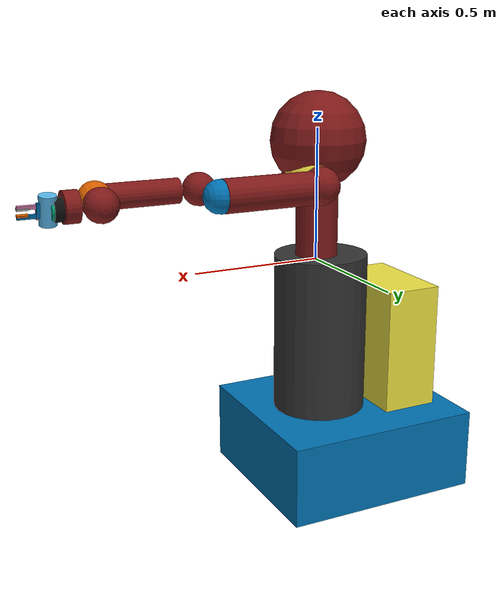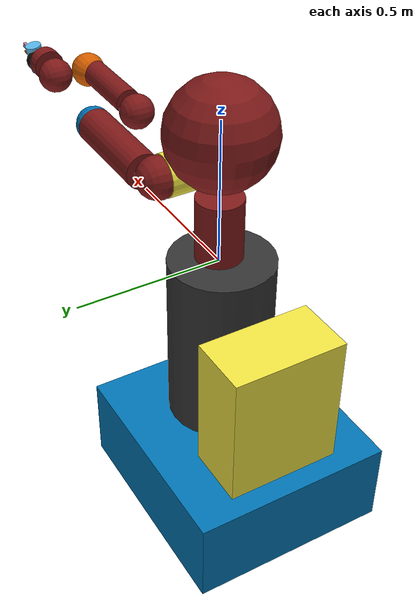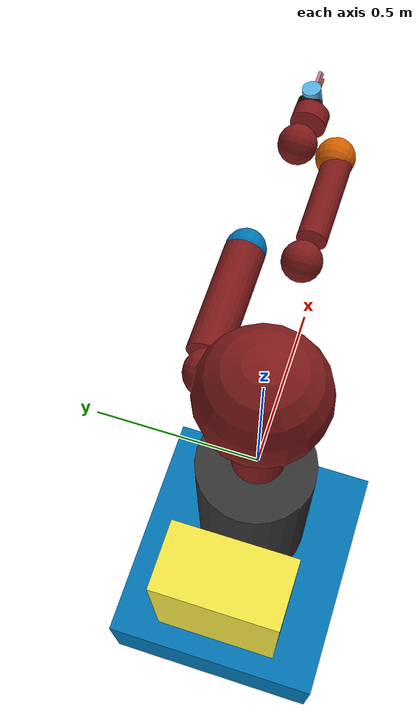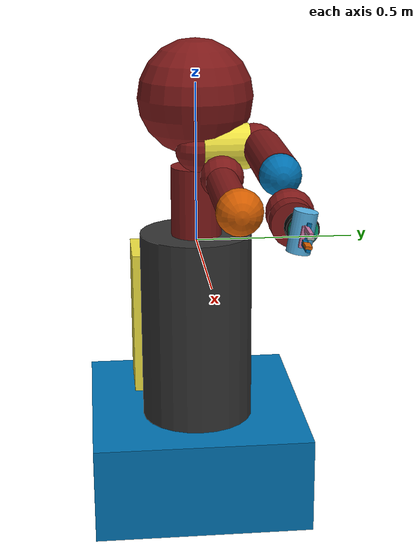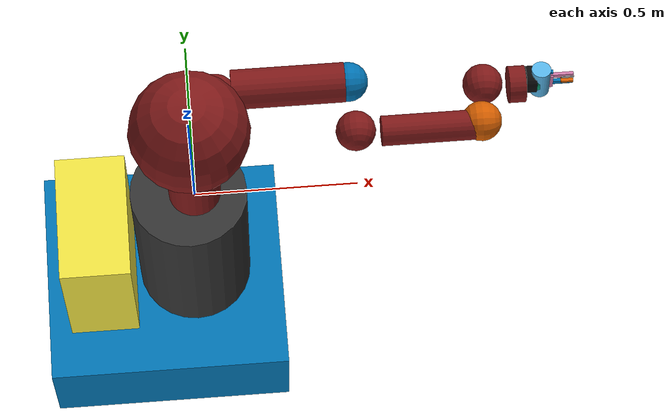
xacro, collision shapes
<?xml version="1.0" ?>
<!-- |    This document was autogenerated by xacro from /home/paul/Downloads/sawyer_ws/install/sawyer_description/share/sawyer_description/urdf/sawyer.urdf.xacro | -->
<!-- |    EDITING THIS FILE BY HAND IS NOT RECOMMENDED                                 | -->
<robot name="sawyer">
  <material name="black">
    <color rgba="0 0 0 1"/>
  </material>
  <material name="darkgray">
    <color rgba=".2 .2 .2 1"/>
  </material>
  <material name="darkred">
    <color rgba=".5 .1 .1 1"/>
  </material>
  <material name="sawyer_red">
    <color rgba=".5 .1 .1 1"/>
  </material>
  <material name="sawyer_gray">
    <color rgba="0.75294 0.75294 0.75294 1"/>
  </material>
  <link name="base"/>
  <link name="torso">
    <visual>
      <origin rpy="0 0 0" xyz="0 0 0"/>
      <geometry>
        <box size="0.001 0.001 0.001"/>
      </geometry>
      <material name="darkgray">
        <color rgba=".2 .2 .2 1"/>
      </material>
    </visual>
    <inertial>
      <origin rpy="0 0 0" xyz="0.000000 0.000000 0.000000"/>
      <mass value="0.0001"/>
      <inertia ixx="1e-08" ixy="0" ixz="0" iyy="1e-08" iyz="0" izz="1e-08"/>
    </inertial>
  </link>
  <link name="pedestal">
    <visual>
      <origin rpy="1.57079632679 0 -1.57079632679" xyz="0.26 0.345 -0.91488"/>
      <geometry>
        <mesh filename="package://sawyer_description/meshes/sawyer_pv/pedestal.DAE"/>
      </geometry>
      <material name="darkgray"/>
    </visual>
    <collision>
      <origin rpy="0 0 0" xyz="-0.02 0 -0.29"/>
      <geometry>
        <cylinder length="0.62" radius="0.18"/>
      </geometry>
    </collision>
    <inertial>
      <origin rpy="0 0 0" xyz="0 0 -0.5"/>
      <mass value="60.86397744"/>
      <inertia ixx="5.0635929" ixy="0.00103417" ixz="0.80199628" iyy="6.08689388" iyz="0.00105311" izz="4.96191932"/>
    </inertial>
  </link>
  <link name="controller_box">
    <collision>
      <origin rpy="0 0 0" xyz="-0.325 0 -0.38"/>
      <geometry>
        <box size="0.22 0.4 0.53"/>
      </geometry>
    </collision>
  </link>
  <joint name="controller_box_fixed" type="fixed">
    <origin rpy="0 0 0" xyz="0.0 0.0 0.0"/>
    <parent link="base"/>
    <child link="controller_box"/>
  </joint>
  <link name="pedestal_feet">
    <collision>
      <origin rpy="0 0 0" xyz="-0.1225 0 -0.758"/>
      <geometry>
        <box size="0.77 0.7 0.31"/>
      </geometry>
    </collision>
  </link>
  <joint name="pedestal_feet_fixed" type="fixed">
    <origin rpy="0 0 0" xyz="0.0 0.0 0.0"/>
    <parent link="base"/>
    <child link="pedestal_feet"/>
  </joint>
  <joint name="pedestal_fixed" type="fixed">
    <origin rpy="0 0 0" xyz="0.0 0.0 0.0"/>
    <parent link="base"/>
    <child link="pedestal"/>
  </joint>
  <joint name="right_arm_mount" type="fixed">
    <origin rpy="0 0 0" xyz="0.0 0.0 0.0"/>
    <parent link="base"/>
    <child link="right_arm_base_link"/>
  </joint>
  <joint name="torso_t0" type="fixed">
    <origin rpy="0 0 0" xyz="0 0 0"/>
    <parent link="base"/>
    <child link="torso"/>
  </joint>
  <link name="right_arm_base_link">
    <inertial>
      <origin rpy="0 0 0" xyz="-0.0006241 -2.8025E-05 0.065404"/>
      <mass value="2.0687"/>
      <inertia ixx="0.0067599" ixy="-4.2024E-05" ixz="-6.1904E-07" iyy="0.0067877" iyz="1.5888E-05" izz="0.0074031"/>
    </inertial>
    <visual>
      <origin rpy="0 0 0" xyz="0 0 0"/>
      <geometry>
        <mesh filename="package://sawyer_description/meshes/sawyer_pv/base.DAE"/>
      </geometry>
      <material name="sawyer_red"/>
    </visual>
    <collision>
      <origin rpy="0 0 0" xyz="0 0 0.12"/>
      <geometry>
        <cylinder length="0.24" radius="0.08"/>
      </geometry>
    </collision>
  </link>
  <link name="right_l0">
    <inertial>
      <origin rpy="0 0 0" xyz="0.024366 0.010969 0.14363"/>
      <mass value="5.3213"/>
      <inertia ixx="0.053314" ixy="0.0047093" ixz="0.011734" iyy="0.057902" iyz="0.0080179" izz="0.023659"/>
    </inertial>
    <visual>
      <origin rpy="0 0 0" xyz="0 0 0"/>
      <geometry>
        <mesh filename="package://sawyer_description/meshes/sawyer_mp3/l0.DAE"/>
      </geometry>
      <material name="sawyer_red"/>
    </visual>
    <collision>
      <origin rpy="0 0 0" xyz="0.08 0 0.23"/>
      <geometry>
        <sphere radius="0.07"/>
      </geometry>
    </collision>
  </link>
  <joint name="right_j0" type="revolute">
    <origin rpy="0 0 0" xyz="0 0 0.08"/>
    <parent link="right_arm_base_link"/>
    <child link="right_l0"/>
    <axis xyz="0 0 1"/>
    <limit effort="80.0" lower="-3.0503" upper="3.0503" velocity="1.74"/>
  </joint>
  <link name="head">
    <inertial>
      <origin rpy="0 0 0" xyz="0.0053207 -2.6549E-05 0.1021"/>
      <mass value="1.5795"/>
      <inertia ixx="0.011833" ixy="-4.4669E-06" ixz="4.9425E-05" iyy="0.0082709" iyz="4.2124E-07" izz="0.0049661"/>
    </inertial>
    <visual>
      <origin rpy="0 0 0" xyz="0 0 0"/>
      <geometry>
        <mesh filename="package://sawyer_description/meshes/sawyer_pv/head.DAE"/>
      </geometry>
      <material name="sawyer_red"/>
    </visual>
    <collision>
      <origin rpy="0 0 0" xyz="0 0 0.08"/>
      <geometry>
        <sphere radius="0.18"/>
      </geometry>
    </collision>
  </link>
  <joint name="head_pan" type="revolute">
    <origin rpy="0 0 0" xyz="0 0 0.2965"/>
    <parent link="right_l0"/>
    <child link="head"/>
    <axis xyz="0 0 1"/>
    <limit effort="8" lower="-5.0952" upper="0.9064" velocity="1.8"/>
  </joint>
  <link name="right_torso_itb">
    <inertial>
      <origin rpy="0 0 0" xyz="0.000000 0.000000 0.000000"/>
      <mass value="0.0001"/>
      <inertia ixx="1e-08" ixy="0" ixz="0" iyy="1e-08" iyz="0" izz="1e-08"/>
    </inertial>
  </link>
  <joint name="right_torso_itb" type="fixed">
    <origin rpy="0 -1.57079632679 0" xyz="-.055 0 .22"/>
    <parent link="right_l0"/>
    <child link="right_torso_itb"/>
    <axis xyz="0 0 1"/>
  </joint>
  <link name="right_l1">
    <inertial>
      <origin rpy="0 0 0" xyz="-0.0030849 -0.026811 0.092521"/>
      <mass value="4.505"/>
      <inertia ixx="0.022398" ixy="-0.00023986" ixz="-0.00029362" iyy="0.014613" iyz="-0.0060875" izz="0.017295"/>
    </inertial>
    <visual>
      <origin rpy="0 0 0" xyz="0 0 0"/>
      <geometry>
        <mesh filename="package://sawyer_description/meshes/sawyer_mp3/l1.DAE"/>
      </geometry>
      <material name="sawyer_red"/>
    </visual>
    <collision>
      <origin rpy="0 0 0" xyz="0 0 0.1225"/>
      <geometry>
        <sphere radius="0.07"/>
      </geometry>
    </collision>
  </link>
  <joint name="right_j1" type="revolute">
    <origin rpy="-1.57079632679 1.57079632679 0" xyz="0.081 0.05 0.237"/>
    <parent link="right_l0"/>
    <child link="right_l1"/>
    <axis xyz="0 0 1"/>
    <limit effort="80.0" lower="-3.8095" upper="2.2736" velocity="1.328"/>
  </joint>
  <link name="right_l2">
    <inertial>
      <origin rpy="0 0 0" xyz="-0.00016044 -0.014967 0.13582"/>
      <mass value="1.745"/>
      <inertia ixx="0.025506" ixy="4.4101E-06" ixz="1.4955E-05" iyy="0.0253" iyz="-0.0033204" izz="0.0034179"/>
    </inertial>
    <visual>
      <origin rpy="0 0 0" xyz="0 0 0"/>
      <geometry>
        <mesh filename="package://sawyer_description/meshes/sawyer_pv/l2.DAE"/>
      </geometry>
      <material name="sawyer_red"/>
    </visual>
    <collision>
      <origin rpy="0 0 0" xyz="0 0 0.08"/>
      <geometry>
        <cylinder length="0.34" radius="0.06"/>
      </geometry>
    </collision>
  </link>
  <joint name="right_j2" type="revolute">
    <origin rpy="1.57079632679 0 0" xyz="0 -0.14 0.1425"/>
    <parent link="right_l1"/>
    <child link="right_l2"/>
    <axis xyz="0 0 1"/>
    <limit effort="40.0" lower="-3.0426" upper="3.0426" velocity="1.957"/>
  </joint>
  <link name="right_l3">
    <inertial>
      <origin rpy="0 0 0" xyz="-0.0048135 -0.0281 -0.084154"/>
      <mass value="2.5097"/>
      <inertia ixx="0.01016" ixy="-9.7452E-06" ixz="0.00026624" iyy="0.0065685" iyz="0.0030316" izz="0.0069078"/>
    </inertial>
    <visual>
      <origin rpy="0 0 0" xyz="0 0 0"/>
      <geometry>
        <mesh filename="package://sawyer_description/meshes/sawyer_pv/l3.DAE"/>
      </geometry>
      <material name="sawyer_red"/>
    </visual>
    <collision>
      <origin rpy="0 0 0" xyz="0 -0.01 -0.12"/>
      <geometry>
        <sphere radius="0.06"/>
      </geometry>
    </collision>
  </link>
  <joint name="right_j3" type="revolute">
    <origin rpy="-1.57079632679 0 0" xyz="0 -0.042 0.26"/>
    <parent link="right_l2"/>
    <child link="right_l3"/>
    <axis xyz="0 0 1"/>
    <limit effort="40.0" lower="-3.0439" upper="3.0439" velocity="1.957"/>
  </joint>
  <link name="right_l4">
    <inertial>
      <origin rpy="0 0 0" xyz="-0.0018844 0.0069001 0.1341"/>
      <mass value="1.1136"/>
      <inertia ixx="0.013557" ixy="1.8109E-05" ixz="0.00013523" iyy="0.013555" iyz="0.0010561" izz="0.0013658"/>
    </inertial>
    <visual>
      <origin rpy="0 0 0" xyz="0 0 0"/>
      <geometry>
        <mesh filename="package://sawyer_description/meshes/sawyer_pv/l4.DAE"/>
      </geometry>
      <material name="sawyer_red"/>
    </visual>
    <collision>
      <origin rpy="0 0 0" xyz="0 0 0.11"/>
      <geometry>
        <cylinder length="0.30" radius="0.045"/>
      </geometry>
    </collision>
  </link>
  <joint name="right_j4" type="revolute">
    <origin rpy="1.57079632679 0 0" xyz="0 -0.125 -0.1265"/>
    <parent link="right_l3"/>
    <child link="right_l4"/>
    <axis xyz="0 0 1"/>
    <limit effort="9.0" lower="-2.9761" upper="2.9761" velocity="3.485"/>
  </joint>
  <link name="right_arm_itb">
    <inertial>
      <origin rpy="0 0 0" xyz="0.000000 0.000000 0.000000"/>
      <mass value="0.0001"/>
      <inertia ixx="1e-08" ixy="0" ixz="0" iyy="1e-08" iyz="0" izz="1e-08"/>
    </inertial>
  </link>
  <joint name="right_arm_itb" type="fixed">
    <origin rpy="0 -1.57079632679 0" xyz="-.055 0 .075"/>
    <parent link="right_l4"/>
    <child link="right_arm_itb"/>
    <axis xyz="0 0 1"/>
  </joint>
  <link name="right_l5">
    <inertial>
      <origin rpy="0 0 0" xyz="0.0061133 -0.023697 0.076416"/>
      <mass value="1.5625"/>
      <inertia ixx="0.0047328" ixy="0.00011526" ixz="4.6269E-05" iyy="0.0029676" iyz="-0.0011557" izz="0.0031762"/>
    </inertial>
    <visual>
      <origin rpy="0 0 0" xyz="0 0 0"/>
      <geometry>
        <mesh filename="package://sawyer_description/meshes/sawyer_pv/l5.DAE"/>
      </geometry>
      <material name="sawyer_red"/>
    </visual>
    <collision>
      <origin rpy="0 0 0" xyz="0 0 0.1"/>
      <geometry>
        <sphere radius="0.06"/>
      </geometry>
    </collision>
  </link>
  <joint name="right_j5" type="revolute">
    <origin rpy="-1.57079632679 0 0" xyz="0 0.031 0.275"/>
    <parent link="right_l4"/>
    <child link="right_l5"/>
    <axis xyz="0 0 1"/>
    <limit effort="9.0" lower="-2.9761" upper="2.9761" velocity="3.485"/>
  </joint>
  <link name="right_hand_camera"/>
  <joint name="right_hand_camera" type="fixed">
    <origin rpy="0 1.57079632679 0" xyz="0.039552 -0.033 0.0695"/>
    <parent link="right_l5"/>
    <child link="right_hand_camera"/>
    <axis xyz="0 0 0"/>
  </joint>
  <link name="right_wrist"/>
  <joint name="right_wrist" type="fixed">
    <origin rpy="1.57079632679 0 0" xyz="0 0 0.10541"/>
    <parent link="right_l5"/>
    <child link="right_wrist"/>
    <axis xyz="0 0 0"/>
  </joint>
  <link name="right_l6">
    <inertial>
      <origin rpy="0 0 0" xyz="-8.0726E-06 0.0085838 -0.0049566"/>
      <mass value="0.3292"/>
      <inertia ixx="0.00031105" ixy="1.4771E-06" ixz="-3.7074E-07" iyy="0.00021549" iyz="-8.4533E-06" izz="0.00035976"/>
    </inertial>
    <visual>
      <origin rpy="0 0 0" xyz="0 0 0"/>
      <geometry>
        <mesh filename="package://sawyer_description/meshes/sawyer_mp1/l6.DAE"/>
      </geometry>
      <material name="sawyer_red"/>
    </visual>
    <collision>
      <origin rpy="0 0 0" xyz="0 0.015 -0.01"/>
      <geometry>
        <cylinder length="0.05" radius="0.055"/>
      </geometry>
    </collision>
  </link>
  <joint name="right_j6" type="revolute">
    <origin rpy="-1.57079632679 -0.17453 3.1416" xyz="0 -0.11 0.1053"/>
    <parent link="right_l5"/>
    <child link="right_l6"/>
    <axis xyz="0 0 1"/>
    <limit effort="9.0" lower="-4.7124" upper="4.7124" velocity="4.545"/>
  </joint>
  <link name="right_hand">
    <collision>
      <origin rpy="0 0 0" xyz="0 0 0.02"/>
      <geometry>
        <cylinder length="0.03" radius="0.035"/>
      </geometry>
    </collision>
    <inertial>
      <origin rpy="0 0 0" xyz="1.0E-08 1.0E-08 1.0E-08"/>
      <mass value="1.0E-08"/>
      <inertia ixx="1.0E-08" ixy="1.0E-08" ixz="1.0E-08" iyy="1.0E-08" iyz="1.0E-08" izz="1.0E-08"/>
    </inertial>
  </link>
  <joint name="right_hand" type="fixed">
    <origin rpy="0 0 1.570796" xyz="0 0 0.0245"/>
    <axis xyz="0 0 1"/>
    <parent link="right_l6"/>
    <child link="right_hand"/>
  </joint>
  <link name="right_l1_2">
    <inertial>
      <origin rpy="0 0 0" xyz="1.0E-08 1.0E-08 1.0E-08"/>
      <mass value="1.0E-08"/>
      <inertia ixx="1.0E-08" ixy="1.0E-08" ixz="1.0E-08" iyy="1.0E-08" iyz="1.0E-08" izz="1.0E-08"/>
    </inertial>
    <collision>
      <origin rpy="0 0 0" xyz="0 0 0.035"/>
      <geometry>
        <cylinder length="0.14" radius="0.07"/>
      </geometry>
    </collision>
  </link>
  <joint name="right_j1_2" type="fixed">
    <origin rpy="0 0 0" xyz="0 0 0"/>
    <parent link="right_l1"/>
    <child link="right_l1_2"/>
    <axis xyz="0 0 1"/>
  </joint>
  <link name="right_l2_2">
    <inertial>
      <origin rpy="0 0 0" xyz="1.0E-08 1.0E-08 1.0E-08"/>
      <mass value="1.0E-08"/>
      <inertia ixx="1.0E-08" ixy="1.0E-08" ixz="1.0E-08" iyy="1.0E-08" iyz="1.0E-08" izz="1.0E-08"/>
    </inertial>
    <collision>
      <origin rpy="0 0 0" xyz="0 0 0.26"/>
      <geometry>
        <sphere radius="0.06"/>
      </geometry>
    </collision>
  </link>
  <joint name="right_j2_2" type="fixed">
    <origin rpy="0 0 0" xyz="0 0 0"/>
    <parent link="right_l2"/>
    <child link="right_l2_2"/>
    <axis xyz="0 0 1"/>
  </joint>
  <link name="right_l4_2">
    <inertial>
      <origin rpy="0 0 0" xyz="1.0E-08 1.0E-08 1.0E-08"/>
      <mass value="1.0E-08"/>
      <inertia ixx="1.0E-08" ixy="1.0E-08" ixz="1.0E-08" iyy="1.0E-08" iyz="1.0E-08" izz="1.0E-08"/>
    </inertial>
    <collision>
      <origin rpy="0 0 0" xyz="0 0.01 0.26"/>
      <geometry>
        <sphere radius="0.06"/>
      </geometry>
    </collision>
  </link>
  <joint name="right_j4_2" type="fixed">
    <origin rpy="0 0 0" xyz="0 0 0"/>
    <parent link="right_l4"/>
    <child link="right_l4_2"/>
    <axis xyz="0 0 1"/>
  </joint>
  <link name="screen">
    <visual>
      <origin rpy="0 0 0" xyz="0 0 0"/>
      <geometry>
        <box size="0.24 0.14 0.002"/>
      </geometry>
      <material name="darkgray"/>
    </visual>
    <collision>
      <origin rpy="0 0 0" xyz="0 0 0"/>
      <geometry>
        <sphere radius="0.001"/>
      </geometry>
    </collision>
    <inertial>
      <origin rpy="0 0 0" xyz="0 0 0"/>
      <mass value="0.0001"/>
      <inertia ixx="1e-08" ixy="0" ixz="0" iyy="1e-08" iyz="0" izz="1e-08"/>
    </inertial>
  </link>
  <joint name="display_joint" type="fixed">
    <origin rpy="1.57079632679 0 1.57079632679" xyz="0.03 0.0 0.105"/>
    <parent link="head"/>
    <child link="screen"/>
  </joint>
  <link name="head_camera"/>
  <joint name="head_camera" type="fixed">
    <origin rpy="-2.1293 0 -1.57079632679" xyz="0.0228027 0 0.216572"/>
    <parent link="head"/>
    <child link="head_camera"/>
    <axis xyz="0 0 0"/>
  </joint>
  <!-- Base of whole end effector - (Connector Plate + Electric Gripper + Fingers + Tips) -->
  <link name="right_gripper_base">
    <inertial>
      <!-- Sum Gripper Mass - for whole end effector, measured from end of plastic cuff -->
      <mass value="0.47"/>
      <origin rpy="0 0 0" xyz="0.0028 -0.0004 0.0343"/>
      <inertia ixx="1e-08" ixy="0" ixz="0" iyy="1e-08" iyz="0" izz="1e-08"/>
    </inertial>
  </link>
  <!-- Electric Gripper Base Link -->
  <link name="right_electric_gripper_base">
    <visual>
      <origin rpy="0 0 0" xyz="0 0 0"/>
      <geometry>
        <mesh filename="package://intera_tools_description/meshes/electric_gripper/electric_gripper_base.DAE"/>
      </geometry>
    </visual>
    <collision>
      <origin rpy="-1.5707963267948966 3.141592653589793 0" xyz="0.004 0.0 0.025"/>
      <geometry>
        <cylinder length="0.1" radius="0.029"/>
      </geometry>
      <material name="darkred">
        <color rgba=".5 .1 .1 1"/>
      </material>
    </collision>
    <inertial>
      <origin rpy="-1.5707963267948966 3.141592653589793 0" xyz="0.0 0.0 0.0"/>
      <mass value="2e-06"/>
      <inertia ixx="1.1e-09" ixy="0" ixz="0" iyy="1.1e-09" iyz="0" izz="1.1e-09"/>
    </inertial>
  </link>
  <!-- Connector Plate Joint -->
  <joint name="right_connector_plate_base_joint" type="fixed">
    <origin rpy="0 0 0" xyz="0 0 0.0018"/>
    <parent link="right_gripper_base"/>
    <child link="right_connector_plate_base"/>
  </joint>
  <link name="right_connector_plate_base">
    <inertial>
      <origin rpy="0 0 0" xyz="0 0 0"/>
      <mass value="0.0"/>
      <inertia ixx="6.9922E-05" ixy="6.1026E-08" ixz="-1.7042E-06" iyy="6.8188E-05" iyz="-1.6118E-08" izz="0.00012392"/>
    </inertial>
    <visual>
      <origin rpy="0 0 0" xyz="0 0 0"/>
      <geometry>
        <mesh filename="package://intera_tools_description/meshes/connector_plate/connector_plate.STL"/>
      </geometry>
      <material name="black">
        <color rgba="0.05 0.05 0.05 1"/>
      </material>
    </visual>
    <collision>
      <origin rpy="0 0 0" xyz="0 0 0.0135"/>
      <geometry>
        <cylinder length="0.0302" radius="0.04"/>
      </geometry>
      <material name="darkred">
        <color rgba=".5 .1 .1 1"/>
      </material>
    </collision>
  </link>
  <link name="right_connector_plate_mount"/>
  <joint name="right_connector_plate_mount_joint" type="fixed">
    <origin rpy="0 0 0" xyz="0 0 0.0176"/>
    <parent link="right_connector_plate_base"/>
    <child link="right_connector_plate_mount"/>
  </joint>
  <!-- Electric Gripper Base joint -->
  <joint name="right_electric_gripper_base_joint" type="fixed">
    <origin rpy="0 0 0" xyz="0 0 0"/>
    <parent link="right_connector_plate_mount"/>
    <child link="right_electric_gripper_base"/>
  </joint>
  <link name="right_gripper_l_finger">
    <visual>
      <origin rpy="0 0 -3.141592653589793" xyz="0 0 0"/>
      <geometry>
        <mesh filename="package://intera_tools_description/meshes/electric_gripper/fingers/standard_narrow.DAE"/>
      </geometry>
    </visual>
    <collision>
      <origin rpy="0 0 -3.141592653589793" xyz="0 0.01725 0.04"/>
      <geometry>
        <box size="0.01 0.0135 0.075"/>
      </geometry>
    </collision>
    <collision>
      <origin rpy="0 0 -3.141592653589793" xyz="-0.005 -0.003 0.0083"/>
      <geometry>
        <box size="0.01 0.05 0.017"/>
      </geometry>
    </collision>
    <inertial>
      <origin rpy="0 0 -3.141592653589793" xyz="0 0 0"/>
      <mass value="0.001"/>
      <inertia ixx="0.01" ixy="0" ixz="0" iyy="0.01" iyz="0" izz="0.01"/>
    </inertial>
  </link>
  <link name="right_gripper_l_finger_tip">
    <visual>
      <origin rpy="0 0 3.141592653589793" xyz="0 0 0"/>
      <geometry>
        <mesh filename="package://intera_tools_description/meshes/electric_gripper/fingers/basic_soft_tip.DAE"/>
      </geometry>
    </visual>
    <collision>
      <origin rpy="0 0 3.141592653589793" xyz="0 -0.0045 -0.015"/>
      <geometry>
        <box size="0.016 0.007 0.037"/>
      </geometry>
    </collision>
    <inertial>
      <origin rpy="0 0 3.141592653589793" xyz="0 0 0"/>
      <mass value="0.001"/>
      <inertia ixx="0.01" ixy="0" ixz="0" iyy="0.01" iyz="0" izz="0.01"/>
    </inertial>
  </link>
  <joint name="right_gripper_l_finger_tip_joint" type="fixed">
    <origin rpy="0 0 0" xyz="0.0 0.01725 0.075"/>
    <parent link="right_gripper_l_finger"/>
    <child link="right_gripper_l_finger_tip"/>
  </joint>
  <link name="right_gripper_r_finger">
    <visual>
      <origin rpy="0 0 -0.0" xyz="0 0 0"/>
      <geometry>
        <mesh filename="package://intera_tools_description/meshes/electric_gripper/fingers/standard_narrow.DAE"/>
      </geometry>
    </visual>
    <collision>
      <origin rpy="0 0 -0.0" xyz="0 -0.01725 0.04"/>
      <geometry>
        <box size="0.01 0.0135 0.075"/>
      </geometry>
    </collision>
    <collision>
      <origin rpy="0 0 -0.0" xyz="0.005 0.003 0.0083"/>
      <geometry>
        <box size="0.01 0.05 0.017"/>
      </geometry>
    </collision>
    <inertial>
      <origin rpy="0 0 -0.0" xyz="0 0 0"/>
      <mass value="0.001"/>
      <inertia ixx="0.01" ixy="0" ixz="0" iyy="0.01" iyz="0" izz="0.01"/>
    </inertial>
  </link>
  <link name="right_gripper_r_finger_tip">
    <visual>
      <origin rpy="0 0 0.0" xyz="0 0 0"/>
      <geometry>
        <mesh filename="package://intera_tools_description/meshes/electric_gripper/fingers/basic_soft_tip.DAE"/>
      </geometry>
    </visual>
    <collision>
      <origin rpy="0 0 0.0" xyz="0 0.0045 -0.015"/>
      <geometry>
        <box size="0.016 0.007 0.037"/>
      </geometry>
    </collision>
    <inertial>
      <origin rpy="0 0 0.0" xyz="0 0 0"/>
      <mass value="0.001"/>
      <inertia ixx="0.01" ixy="0" ixz="0" iyy="0.01" iyz="0" izz="0.01"/>
    </inertial>
  </link>
  <joint name="right_gripper_r_finger_tip_joint" type="fixed">
    <origin rpy="0 0 0" xyz="0.0 -0.01725 0.075"/>
    <parent link="right_gripper_r_finger"/>
    <child link="right_gripper_r_finger_tip"/>
  </joint>
  <joint name="right_gripper_base_joint" type="fixed">
    <origin rpy="0 0 0" xyz="0 0 -0.005"/>
    <parent link="right_hand"/>
    <child link="right_gripper_base"/>
  </joint>
  <joint name="right_gripper_tip_joint" type="fixed">
    <origin rpy="0 0 0" xyz="0 0 0.14062"/>
    <parent link="right_gripper_base"/>
    <child link="right_gripper_tip"/>
  </joint>
  <!-- Electric Gripper Tip link -->
  <link name="right_gripper_tip">
    <inertial>
      <origin rpy="0 0 0" xyz="0 0 0"/>
      <mass value="2e-06"/>
      <inertia ixx="1.1e-09" ixy="0" ixz="0" iyy="1.1e-09" iyz="0" izz="1.1e-09"/>
    </inertial>
  </link>
  <joint name="right_gripper_l_finger_joint" type="prismatic">
    <origin rpy="0 0 0" xyz="0.003 -0.0014999999999999996 0.04552"/>
    <axis xyz="0 1 0"/>
    <parent link="right_electric_gripper_base"/>
    <child link="right_gripper_l_finger"/>
    <limit effort="20.0" lower="0.0" upper="0.020833" velocity="5.0"/>
    <dynamics damping="100.0" friction="500.0"/>
  </joint>
  <joint name="right_gripper_r_finger_joint" type="prismatic">
    <origin rpy="0 0 0" xyz="0.003 0.0014999999999999996 0.04552"/>
    <axis xyz="0 1 0"/>
    <parent link="right_electric_gripper_base"/>
    <child link="right_gripper_r_finger"/>
    <limit effort="20.0" lower="-0.020833" upper="0.0" velocity="5.0"/>
    <mimic joint="right_gripper_l_finger_joint" multiplier="-1.0"/>
    <dynamics damping="100.0" friction="500.0"/>
  </joint>
   <!-- ros2 control tag -->
    <ros2_control name="robot_6_dof" type="system">
      <hardware>
        <plugin>sawyer_robot_driver/RobotSystem</plugin>
      </hardware>
      <joint name="right_j0">
        <command_interface name="position">
          <param name="min">{-2*pi}</param>
          <param name="max">{2*pi}</param>
        </command_interface>
        <command_interface name="velocity">
          <param name="min">-3.15</param>
          <param name="max">3.15</param>
        </command_interface>
        <state_interface name="position">
          <param name="initial_value">0.0</param>
        </state_interface>
        <state_interface name="velocity"/>
        <state_interface name="effort"/>
      </joint>
      <joint name="right_j1">
        <command_interface name="position">
          <param name="min">{-2*pi}</param>
          <param name="max">{2*pi}</param>
        </command_interface>
        <command_interface name="velocity">
          <param name="min">-3.15</param>
          <param name="max">3.15</param>
        </command_interface>
        <state_interface name="position">
          <param name="initial_value">0.0</param>
        </state_interface>
        <state_interface name="velocity"/>
        <state_interface name="effort"/>
      </joint>
      <joint name="right_j2">
        <command_interface name="position">
          <param name="min">{-pi}</param>
          <param name="max">{pi}</param>
        </command_interface>
        <command_interface name="velocity">
          <param name="min">-3.15</param>
          <param name="max">3.15</param>
        </command_interface>
        <state_interface name="position">
          <param name="initial_value">0.0</param>
        </state_interface>
        <state_interface name="velocity"/>
        <state_interface name="effort"/>
      </joint>
      <joint name="right_j3">
        <command_interface name="position">
          <param name="min">{-2*pi}</param>
          <param name="max">{2*pi}</param>
        </command_interface>
        <command_interface name="velocity">
          <param name="min">-3.2</param>
          <param name="max">3.2</param>
        </command_interface>
        <state_interface name="position">
          <param name="initial_value">0.0</param>
        </state_interface>
        <state_interface name="velocity"/>
        <state_interface name="effort"/>
      </joint>
      <joint name="right_j4">
        <command_interface name="position">
          <param name="min">{-2*pi}</param>
          <param name="max">{2*pi}</param>
        </command_interface>
        <command_interface name="velocity">
          <param name="min">-3.2</param>
          <param name="max">3.2</param>
        </command_interface>
        <state_interface name="position">
          <param name="initial_value">0.0</param>
        </state_interface>
        <state_interface name="velocity"/>
        <state_interface name="effort"/>
      </joint>
      <joint name="right_j5">
        <command_interface name="position">
          <param name="min">{-2*pi}</param>
          <param name="max">{2*pi}</param>
        </command_interface>
        <command_interface name="velocity">
          <param name="min">-3.2</param>
          <param name="max">3.2</param>
        </command_interface>
        <state_interface name="position">
          <param name="initial_value">0.0</param>
        </state_interface>
        <state_interface name="velocity"/>
        <state_interface name="effort"/>
      </joint>
      <joint name="right_j6">
        <command_interface name="position">
          <param name="min">{-2*pi}</param>
          <param name="max">{2*pi}</param>
        </command_interface>
        <command_interface name="velocity">
          <param name="min">-3.2</param>
          <param name="max">3.2</param>
        </command_interface>
        <state_interface name="position">
          <param name="initial_value">0.0</param>
        </state_interface>
        <state_interface name="velocity"/>
        <state_interface name="effort"/>
      </joint>
    </ros2_control>
</robot>
